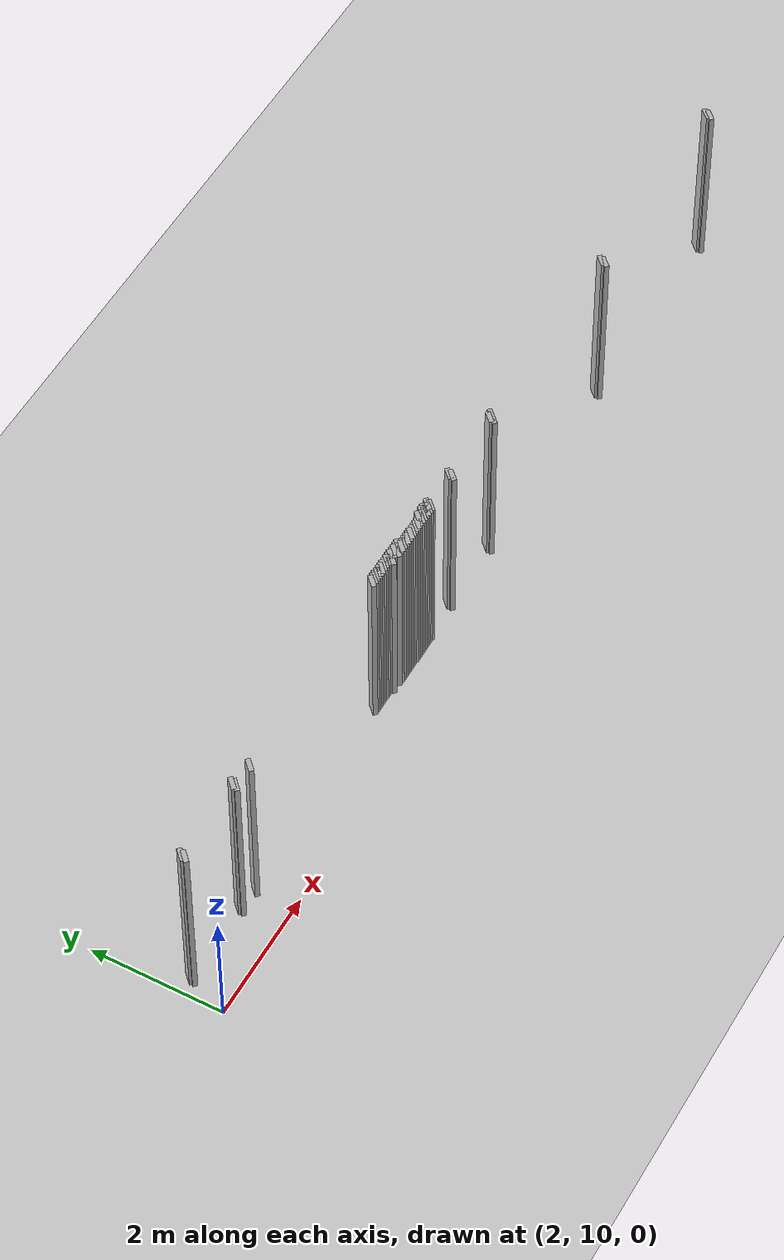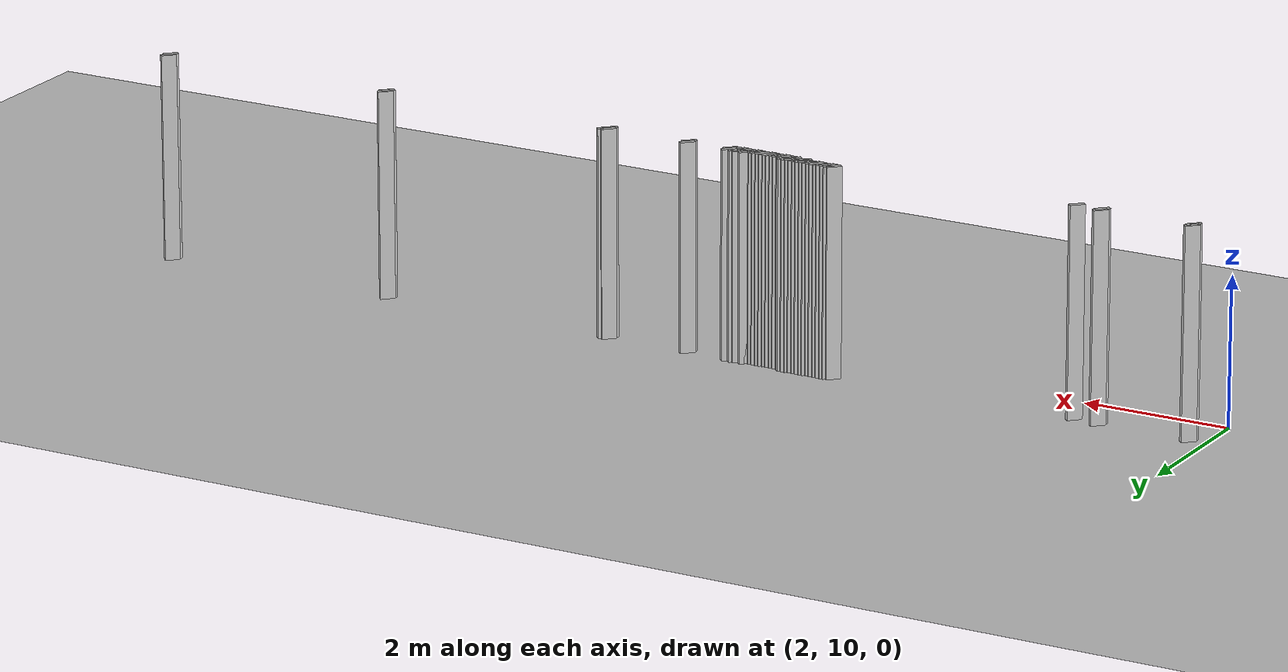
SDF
<sdf version="1.5">
 <world name="default">
  <include><uri>model://ground_plane</uri></include>
  <include><uri>model://sun</uri></include>
  <model name="grey_wall_1480">
   <static>1</static>
   <link name="link">
    <pose>7.2 10.700000000000001  1.4 0 0 -0.7853981633974483</pose>
    <collision name="collision">
     <geometry><box><size>0.07071067811865576 .2  2.8</size></box></geometry>
    </collision>
    <visual name="visual">
     <cast_shadows>0</cast_shadows>
     <geometry><box><size>0.07071067811865576 .2  2.8</size></box></geometry>
    </visual>
   </link>
  </model>
  <model name="grey_wall_1481">
   <static>1</static>
   <link name="link">
    <pose>7.25 10.700000000000001  1.4 0 0 -0.7853981633974483</pose>
    <collision name="collision">
     <geometry><box><size>0.07071067811865576 .2  2.8</size></box></geometry>
    </collision>
    <visual name="visual">
     <cast_shadows>0</cast_shadows>
     <geometry><box><size>0.07071067811865576 .2  2.8</size></box></geometry>
    </visual>
   </link>
  </model>
  <model name="grey_wall_1482">
   <static>1</static>
   <link name="link">
    <pose>7.300000000000001 10.700000000000001  1.4 0 0 -0.7853981633974483</pose>
    <collision name="collision">
     <geometry><box><size>0.07071067811865576 .2  2.8</size></box></geometry>
    </collision>
    <visual name="visual">
     <cast_shadows>0</cast_shadows>
     <geometry><box><size>0.07071067811865576 .2  2.8</size></box></geometry>
    </visual>
   </link>
  </model>
  <model name="grey_wall_1483">
   <static>1</static>
   <link name="link">
    <pose>7.3500000000000005 10.700000000000001  1.4 0 0 -0.7853981633974483</pose>
    <collision name="collision">
     <geometry><box><size>0.07071067811865576 .2  2.8</size></box></geometry>
    </collision>
    <visual name="visual">
     <cast_shadows>0</cast_shadows>
     <geometry><box><size>0.07071067811865576 .2  2.8</size></box></geometry>
    </visual>
   </link>
  </model>
  <model name="grey_wall_1484">
   <static>1</static>
   <link name="link">
    <pose>7.4 10.700000000000001  1.4 0 0 -0.7853981633974483</pose>
    <collision name="collision">
     <geometry><box><size>0.07071067811865576 .2  2.8</size></box></geometry>
    </collision>
    <visual name="visual">
     <cast_shadows>0</cast_shadows>
     <geometry><box><size>0.07071067811865576 .2  2.8</size></box></geometry>
    </visual>
   </link>
  </model>
  <model name="grey_wall_1485">
   <static>1</static>
   <link name="link">
    <pose>7.45 10.700000000000001  1.4 0 0 -0.7853981633974483</pose>
    <collision name="collision">
     <geometry><box><size>0.07071067811865576 .2  2.8</size></box></geometry>
    </collision>
    <visual name="visual">
     <cast_shadows>0</cast_shadows>
     <geometry><box><size>0.07071067811865576 .2  2.8</size></box></geometry>
    </visual>
   </link>
  </model>
  <model name="grey_wall_1486">
   <static>1</static>
   <link name="link">
    <pose>7.5 10.700000000000001  1.4 0 0 -0.7853981633974483</pose>
    <collision name="collision">
     <geometry><box><size>0.07071067811865576 .2  2.8</size></box></geometry>
    </collision>
    <visual name="visual">
     <cast_shadows>0</cast_shadows>
     <geometry><box><size>0.07071067811865576 .2  2.8</size></box></geometry>
    </visual>
   </link>
  </model>
  <model name="grey_wall_1487">
   <static>1</static>
   <link name="link">
    <pose>7.550000000000001 10.700000000000001  1.4 0 0 -0.7853981633974483</pose>
    <collision name="collision">
     <geometry><box><size>0.07071067811865576 .2  2.8</size></box></geometry>
    </collision>
    <visual name="visual">
     <cast_shadows>0</cast_shadows>
     <geometry><box><size>0.07071067811865576 .2  2.8</size></box></geometry>
    </visual>
   </link>
  </model>
  <model name="grey_wall_1488">
   <static>1</static>
   <link name="link">
    <pose>7.6000000000000005 10.700000000000001  1.4 0 0 -0.7853981633974483</pose>
    <collision name="collision">
     <geometry><box><size>0.07071067811865576 .2  2.8</size></box></geometry>
    </collision>
    <visual name="visual">
     <cast_shadows>0</cast_shadows>
     <geometry><box><size>0.07071067811865576 .2  2.8</size></box></geometry>
    </visual>
   </link>
  </model>
  <model name="grey_wall_1489">
   <static>1</static>
   <link name="link">
    <pose>7.65 10.700000000000001  1.4 0 0 -0.7853981633974483</pose>
    <collision name="collision">
     <geometry><box><size>0.07071067811865576 .2  2.8</size></box></geometry>
    </collision>
    <visual name="visual">
     <cast_shadows>0</cast_shadows>
     <geometry><box><size>0.07071067811865576 .2  2.8</size></box></geometry>
    </visual>
   </link>
  </model>
  <model name="grey_wall_1490">
   <static>1</static>
   <link name="link">
    <pose>7.7 10.700000000000001  1.4 0 0 -0.7853981633974483</pose>
    <collision name="collision">
     <geometry><box><size>0.07071067811865576 .2  2.8</size></box></geometry>
    </collision>
    <visual name="visual">
     <cast_shadows>0</cast_shadows>
     <geometry><box><size>0.07071067811865576 .2  2.8</size></box></geometry>
    </visual>
   </link>
  </model>
  <model name="grey_wall_1491">
   <static>1</static>
   <link name="link">
    <pose>7.75 10.700000000000001  1.4 0 0 -0.7853981633974483</pose>
    <collision name="collision">
     <geometry><box><size>0.07071067811865576 .2  2.8</size></box></geometry>
    </collision>
    <visual name="visual">
     <cast_shadows>0</cast_shadows>
     <geometry><box><size>0.07071067811865576 .2  2.8</size></box></geometry>
    </visual>
   </link>
  </model>
  <model name="grey_wall_1492">
   <static>1</static>
   <link name="link">
    <pose>7.800000000000001 10.700000000000001  1.4 0 0 -0.7853981633974483</pose>
    <collision name="collision">
     <geometry><box><size>0.07071067811865576 .2  2.8</size></box></geometry>
    </collision>
    <visual name="visual">
     <cast_shadows>0</cast_shadows>
     <geometry><box><size>0.07071067811865576 .2  2.8</size></box></geometry>
    </visual>
   </link>
  </model>
  <model name="grey_wall_1493">
   <static>1</static>
   <link name="link">
    <pose>7.8500000000000005 10.700000000000001  1.4 0 0 -0.7853981633974483</pose>
    <collision name="collision">
     <geometry><box><size>0.07071067811865576 .2  2.8</size></box></geometry>
    </collision>
    <visual name="visual">
     <cast_shadows>0</cast_shadows>
     <geometry><box><size>0.07071067811865576 .2  2.8</size></box></geometry>
    </visual>
   </link>
  </model>
  <model name="grey_wall_1494">
   <static>1</static>
   <link name="link">
    <pose>7.9 10.700000000000001  1.4 0 0 -0.7853981633974483</pose>
    <collision name="collision">
     <geometry><box><size>0.07071067811865576 .2  2.8</size></box></geometry>
    </collision>
    <visual name="visual">
     <cast_shadows>0</cast_shadows>
     <geometry><box><size>0.07071067811865576 .2  2.8</size></box></geometry>
    </visual>
   </link>
  </model>
  <model name="grey_wall_1495">
   <static>1</static>
   <link name="link">
    <pose>8.450000000000001 10.700000000000001  1.4 0 0 -0.7853981633974483</pose>
    <collision name="collision">
     <geometry><box><size>0.07071067811865576 .2  2.8</size></box></geometry>
    </collision>
    <visual name="visual">
     <cast_shadows>0</cast_shadows>
     <geometry><box><size>0.07071067811865576 .2  2.8</size></box></geometry>
    </visual>
   </link>
  </model>
  <model name="grey_wall_1496">
   <static>1</static>
   <link name="link">
    <pose>8.55 10.700000000000001  1.4 0 0 -0.7853981633974483</pose>
    <collision name="collision">
     <geometry><box><size>0.07071067811865576 .2  2.8</size></box></geometry>
    </collision>
    <visual name="visual">
     <cast_shadows>0</cast_shadows>
     <geometry><box><size>0.07071067811865576 .2  2.8</size></box></geometry>
    </visual>
   </link>
  </model>
  <model name="grey_wall_1497">
   <static>1</static>
   <link name="link">
    <pose>8.6 10.700000000000001  1.4 0 0 -0.7853981633974483</pose>
    <collision name="collision">
     <geometry><box><size>0.07071067811865576 .2  2.8</size></box></geometry>
    </collision>
    <visual name="visual">
     <cast_shadows>0</cast_shadows>
     <geometry><box><size>0.07071067811865576 .2  2.8</size></box></geometry>
    </visual>
   </link>
  </model>
  <model name="grey_wall_1498">
   <static>1</static>
   <link name="link">
    <pose>8.700000000000001 10.700000000000001  1.4 0 0 -0.7853981633974483</pose>
    <collision name="collision">
     <geometry><box><size>0.07071067811865576 .2  2.8</size></box></geometry>
    </collision>
    <visual name="visual">
     <cast_shadows>0</cast_shadows>
     <geometry><box><size>0.07071067811865576 .2  2.8</size></box></geometry>
    </visual>
   </link>
  </model>
  <model name="grey_wall_1499">
   <static>1</static>
   <link name="link">
    <pose>9.3 10.700000000000001  1.4 0 0 -0.7853981633974483</pose>
    <collision name="collision">
     <geometry><box><size>0.07071067811865576 .2  2.8</size></box></geometry>
    </collision>
    <visual name="visual">
     <cast_shadows>0</cast_shadows>
     <geometry><box><size>0.07071067811865576 .2  2.8</size></box></geometry>
    </visual>
   </link>
  </model>
  <model name="grey_wall_1500">
   <static>1</static>
   <link name="link">
    <pose>10.450000000000001 10.700000000000001  1.4 0 0 -0.7853981633974483</pose>
    <collision name="collision">
     <geometry><box><size>0.07071067811865576 .2  2.8</size></box></geometry>
    </collision>
    <visual name="visual">
     <cast_shadows>0</cast_shadows>
     <geometry><box><size>0.07071067811865576 .2  2.8</size></box></geometry>
    </visual>
   </link>
  </model>
  <model name="grey_wall_1501">
   <static>1</static>
   <link name="link">
    <pose>10.5 10.700000000000001  1.4 0 0 -0.7853981633974483</pose>
    <collision name="collision">
     <geometry><box><size>0.07071067811865576 .2  2.8</size></box></geometry>
    </collision>
    <visual name="visual">
     <cast_shadows>0</cast_shadows>
     <geometry><box><size>0.07071067811865576 .2  2.8</size></box></geometry>
    </visual>
   </link>
  </model>
  <model name="grey_wall_1502">
   <static>1</static>
   <link name="link">
    <pose>13.75 10.700000000000001  1.4 0 0 -0.7853981633974483</pose>
    <collision name="collision">
     <geometry><box><size>0.07071067811865576 .2  2.8</size></box></geometry>
    </collision>
    <visual name="visual">
     <cast_shadows>0</cast_shadows>
     <geometry><box><size>0.07071067811865576 .2  2.8</size></box></geometry>
    </visual>
   </link>
  </model>
  <model name="grey_wall_1503">
   <static>1</static>
   <link name="link">
    <pose>17.05 10.700000000000001  1.4 0 0 -0.7853981633974838</pose>
    <collision name="collision">
     <geometry><box><size>0.07071067811865325 .2  2.8</size></box></geometry>
    </collision>
    <visual name="visual">
     <cast_shadows>0</cast_shadows>
     <geometry><box><size>0.07071067811865325 .2  2.8</size></box></geometry>
    </visual>
   </link>
  </model>
  <model name="grey_wall_1504">
   <static>1</static>
   <link name="link">
    <pose>2.25 10.65  1.4 0 0 -0.7853981633974572</pose>
    <collision name="collision">
     <geometry><box><size>0.07071067811865513 .2  2.8</size></box></geometry>
    </collision>
    <visual name="visual">
     <cast_shadows>0</cast_shadows>
     <geometry><box><size>0.07071067811865513 .2  2.8</size></box></geometry>
    </visual>
   </link>
  </model>
  <model name="grey_wall_1505">
   <static>1</static>
   <link name="link">
    <pose>3.5 10.65  1.4 0 0 -0.7853981633974572</pose>
    <collision name="collision">
     <geometry><box><size>0.07071067811865513 .2  2.8</size></box></geometry>
    </collision>
    <visual name="visual">
     <cast_shadows>0</cast_shadows>
     <geometry><box><size>0.07071067811865513 .2  2.8</size></box></geometry>
    </visual>
   </link>
  </model>
  <model name="grey_wall_1506">
   <static>1</static>
   <link name="link">
    <pose>7.65 10.65  1.4 0 0 -0.7853981633974483</pose>
    <collision name="collision">
     <geometry><box><size>0.07071067811865576 .2  2.8</size></box></geometry>
    </collision>
    <visual name="visual">
     <cast_shadows>0</cast_shadows>
     <geometry><box><size>0.07071067811865576 .2  2.8</size></box></geometry>
    </visual>
   </link>
  </model>
  <model name="grey_wall_1507">
   <static>1</static>
   <link name="link">
    <pose>7.800000000000001 10.65  1.4 0 0 -0.7853981633974483</pose>
    <collision name="collision">
     <geometry><box><size>0.07071067811865576 .2  2.8</size></box></geometry>
    </collision>
    <visual name="visual">
     <cast_shadows>0</cast_shadows>
     <geometry><box><size>0.07071067811865576 .2  2.8</size></box></geometry>
    </visual>
   </link>
  </model>
  <model name="grey_wall_1508">
   <static>1</static>
   <link name="link">
    <pose>7.8500000000000005 10.65  1.4 0 0 -0.7853981633974483</pose>
    <collision name="collision">
     <geometry><box><size>0.07071067811865576 .2  2.8</size></box></geometry>
    </collision>
    <visual name="visual">
     <cast_shadows>0</cast_shadows>
     <geometry><box><size>0.07071067811865576 .2  2.8</size></box></geometry>
    </visual>
   </link>
  </model>
  <model name="grey_wall_1509">
   <static>1</static>
   <link name="link">
    <pose>7.9 10.65  1.4 0 0 -0.7853981633974483</pose>
    <collision name="collision">
     <geometry><box><size>0.07071067811865576 .2  2.8</size></box></geometry>
    </collision>
    <visual name="visual">
     <cast_shadows>0</cast_shadows>
     <geometry><box><size>0.07071067811865576 .2  2.8</size></box></geometry>
    </visual>
   </link>
  </model>
  <model name="grey_wall_1510">
   <static>1</static>
   <link name="link">
    <pose>7.95 10.65  1.4 0 0 -0.7853981633974483</pose>
    <collision name="collision">
     <geometry><box><size>0.07071067811865576 .2  2.8</size></box></geometry>
    </collision>
    <visual name="visual">
     <cast_shadows>0</cast_shadows>
     <geometry><box><size>0.07071067811865576 .2  2.8</size></box></geometry>
    </visual>
   </link>
  </model>
  <model name="grey_wall_1511">
   <static>1</static>
   <link name="link">
    <pose>8.0 10.65  1.4 0 0 -0.7853981633974483</pose>
    <collision name="collision">
     <geometry><box><size>0.07071067811865576 .2  2.8</size></box></geometry>
    </collision>
    <visual name="visual">
     <cast_shadows>0</cast_shadows>
     <geometry><box><size>0.07071067811865576 .2  2.8</size></box></geometry>
    </visual>
   </link>
  </model>
  <model name="grey_wall_1512">
   <static>1</static>
   <link name="link">
    <pose>8.05 10.65  1.4 0 0 -0.7853981633974483</pose>
    <collision name="collision">
     <geometry><box><size>0.07071067811865576 .2  2.8</size></box></geometry>
    </collision>
    <visual name="visual">
     <cast_shadows>0</cast_shadows>
     <geometry><box><size>0.07071067811865576 .2  2.8</size></box></geometry>
    </visual>
   </link>
  </model>
  <model name="grey_wall_1513">
   <static>1</static>
   <link name="link">
    <pose>8.1 10.65  1.4 0 0 -0.7853981633974483</pose>
    <collision name="collision">
     <geometry><box><size>0.07071067811865576 .2  2.8</size></box></geometry>
    </collision>
    <visual name="visual">
     <cast_shadows>0</cast_shadows>
     <geometry><box><size>0.07071067811865576 .2  2.8</size></box></geometry>
    </visual>
   </link>
  </model>
  <model name="grey_wall_1514">
   <static>1</static>
   <link name="link">
    <pose>8.15 10.65  1.4 0 0 -0.7853981633974483</pose>
    <collision name="collision">
     <geometry><box><size>0.07071067811865576 .2  2.8</size></box></geometry>
    </collision>
    <visual name="visual">
     <cast_shadows>0</cast_shadows>
     <geometry><box><size>0.07071067811865576 .2  2.8</size></box></geometry>
    </visual>
   </link>
  </model>
  <model name="grey_wall_1515">
   <static>1</static>
   <link name="link">
    <pose>8.200000000000001 10.65  1.4 0 0 -0.7853981633974483</pose>
    <collision name="collision">
     <geometry><box><size>0.07071067811865576 .2  2.8</size></box></geometry>
    </collision>
    <visual name="visual">
     <cast_shadows>0</cast_shadows>
     <geometry><box><size>0.07071067811865576 .2  2.8</size></box></geometry>
    </visual>
   </link>
  </model>
  <model name="grey_wall_1516">
   <static>1</static>
   <link name="link">
    <pose>8.25 10.65  1.4 0 0 -0.7853981633974483</pose>
    <collision name="collision">
     <geometry><box><size>0.07071067811865576 .2  2.8</size></box></geometry>
    </collision>
    <visual name="visual">
     <cast_shadows>0</cast_shadows>
     <geometry><box><size>0.07071067811865576 .2  2.8</size></box></geometry>
    </visual>
   </link>
  </model>
  <model name="grey_wall_1517">
   <static>1</static>
   <link name="link">
    <pose>8.3 10.65  1.4 0 0 -0.7853981633974483</pose>
    <collision name="collision">
     <geometry><box><size>0.07071067811865576 .2  2.8</size></box></geometry>
    </collision>
    <visual name="visual">
     <cast_shadows>0</cast_shadows>
     <geometry><box><size>0.07071067811865576 .2  2.8</size></box></geometry>
    </visual>
   </link>
  </model>
  <model name="grey_wall_1518">
   <static>1</static>
   <link name="link">
    <pose>8.35 10.65  1.4 0 0 -0.7853981633974483</pose>
    <collision name="collision">
     <geometry><box><size>0.07071067811865576 .2  2.8</size></box></geometry>
    </collision>
    <visual name="visual">
     <cast_shadows>0</cast_shadows>
     <geometry><box><size>0.07071067811865576 .2  2.8</size></box></geometry>
    </visual>
   </link>
  </model>
  <model name="grey_wall_1519">
   <static>1</static>
   <link name="link">
    <pose>8.4 10.65  1.4 0 0 -0.7853981633974483</pose>
    <collision name="collision">
     <geometry><box><size>0.07071067811865576 .2  2.8</size></box></geometry>
    </collision>
    <visual name="visual">
     <cast_shadows>0</cast_shadows>
     <geometry><box><size>0.07071067811865576 .2  2.8</size></box></geometry>
    </visual>
   </link>
  </model>
  <model name="grey_wall_1520">
   <static>1</static>
   <link name="link">
    <pose>8.450000000000001 10.65  1.4 0 0 -0.7853981633974483</pose>
    <collision name="collision">
     <geometry><box><size>0.07071067811865576 .2  2.8</size></box></geometry>
    </collision>
    <visual name="visual">
     <cast_shadows>0</cast_shadows>
     <geometry><box><size>0.07071067811865576 .2  2.8</size></box></geometry>
    </visual>
   </link>
  </model>
  <model name="grey_wall_1521">
   <static>1</static>
   <link name="link">
    <pose>8.5 10.65  1.4 0 0 -0.7853981633974483</pose>
    <collision name="collision">
     <geometry><box><size>0.07071067811865576 .2  2.8</size></box></geometry>
    </collision>
    <visual name="visual">
     <cast_shadows>0</cast_shadows>
     <geometry><box><size>0.07071067811865576 .2  2.8</size></box></geometry>
    </visual>
   </link>
  </model>
  <model name="grey_wall_1522">
   <static>1</static>
   <link name="link">
    <pose>8.55 10.65  1.4 0 0 -0.7853981633974483</pose>
    <collision name="collision">
     <geometry><box><size>0.07071067811865576 .2  2.8</size></box></geometry>
    </collision>
    <visual name="visual">
     <cast_shadows>0</cast_shadows>
     <geometry><box><size>0.07071067811865576 .2  2.8</size></box></geometry>
    </visual>
   </link>
  </model>
  <model name="grey_wall_1523">
   <static>1</static>
   <link name="link">
    <pose>8.6 10.65  1.4 0 0 -0.7853981633974483</pose>
    <collision name="collision">
     <geometry><box><size>0.07071067811865576 .2  2.8</size></box></geometry>
    </collision>
    <visual name="visual">
     <cast_shadows>0</cast_shadows>
     <geometry><box><size>0.07071067811865576 .2  2.8</size></box></geometry>
    </visual>
   </link>
  </model>
  <model name="grey_wall_1524">
   <static>1</static>
   <link name="link">
    <pose>8.65 10.65  1.4 0 0 -0.7853981633974483</pose>
    <collision name="collision">
     <geometry><box><size>0.07071067811865576 .2  2.8</size></box></geometry>
    </collision>
    <visual name="visual">
     <cast_shadows>0</cast_shadows>
     <geometry><box><size>0.07071067811865576 .2  2.8</size></box></geometry>
    </visual>
   </link>
  </model>
  <model name="grey_wall_1525">
   <static>1</static>
   <link name="link">
    <pose>8.700000000000001 10.65  1.4 0 0 -0.7853981633974483</pose>
    <collision name="collision">
     <geometry><box><size>0.07071067811865576 .2  2.8</size></box></geometry>
    </collision>
    <visual name="visual">
     <cast_shadows>0</cast_shadows>
     <geometry><box><size>0.07071067811865576 .2  2.8</size></box></geometry>
    </visual>
   </link>
  </model>
  <model name="grey_wall_1526">
   <static>1</static>
   <link name="link">
    <pose>9.3 10.65  1.4 0 0 -0.7853981633974483</pose>
    <collision name="collision">
     <geometry><box><size>0.07071067811865576 .2  2.8</size></box></geometry>
    </collision>
    <visual name="visual">
     <cast_shadows>0</cast_shadows>
     <geometry><box><size>0.07071067811865576 .2  2.8</size></box></geometry>
    </visual>
   </link>
  </model>
  <model name="grey_wall_1527">
   <static>1</static>
   <link name="link">
    <pose>10.450000000000001 10.65  1.4 0 0 -0.7853981633974483</pose>
    <collision name="collision">
     <geometry><box><size>0.07071067811865576 .2  2.8</size></box></geometry>
    </collision>
    <visual name="visual">
     <cast_shadows>0</cast_shadows>
     <geometry><box><size>0.07071067811865576 .2  2.8</size></box></geometry>
    </visual>
   </link>
  </model>
  <model name="grey_wall_1528">
   <static>1</static>
   <link name="link">
    <pose>13.75 10.65  1.4 0 0 -0.7853981633974483</pose>
    <collision name="collision">
     <geometry><box><size>0.07071067811865576 .2  2.8</size></box></geometry>
    </collision>
    <visual name="visual">
     <cast_shadows>0</cast_shadows>
     <geometry><box><size>0.07071067811865576 .2  2.8</size></box></geometry>
    </visual>
   </link>
  </model>
  <model name="grey_wall_1529">
   <static>1</static>
   <link name="link">
    <pose>17.05 10.65  1.4 0 0 -0.7853981633974838</pose>
    <collision name="collision">
     <geometry><box><size>0.07071067811865325 .2  2.8</size></box></geometry>
    </collision>
    <visual name="visual">
     <cast_shadows>0</cast_shadows>
     <geometry><box><size>0.07071067811865325 .2  2.8</size></box></geometry>
    </visual>
   </link>
  </model>
  <model name="grey_wall_1530">
   <static>1</static>
   <link name="link">
    <pose>2.25 10.600000000000001  1.4 0 0 -0.7853981633974572</pose>
    <collision name="collision">
     <geometry><box><size>0.07071067811865513 .2  2.8</size></box></geometry>
    </collision>
    <visual name="visual">
     <cast_shadows>0</cast_shadows>
     <geometry><box><size>0.07071067811865513 .2  2.8</size></box></geometry>
    </visual>
   </link>
  </model>
  <model name="grey_wall_1531">
   <static>1</static>
   <link name="link">
    <pose>3.5 10.600000000000001  1.4 0 0 -0.7853981633974572</pose>
    <collision name="collision">
     <geometry><box><size>0.07071067811865513 .2  2.8</size></box></geometry>
    </collision>
    <visual name="visual">
     <cast_shadows>0</cast_shadows>
     <geometry><box><size>0.07071067811865513 .2  2.8</size></box></geometry>
    </visual>
   </link>
  </model>
  <model name="grey_wall_1532">
   <static>1</static>
   <link name="link">
    <pose>3.85 10.600000000000001  1.4 0 0 -0.7853981633974572</pose>
    <collision name="collision">
     <geometry><box><size>0.07071067811865513 .2  2.8</size></box></geometry>
    </collision>
    <visual name="visual">
     <cast_shadows>0</cast_shadows>
     <geometry><box><size>0.07071067811865513 .2  2.8</size></box></geometry>
    </visual>
   </link>
  </model>
 </world>
</sdf>
